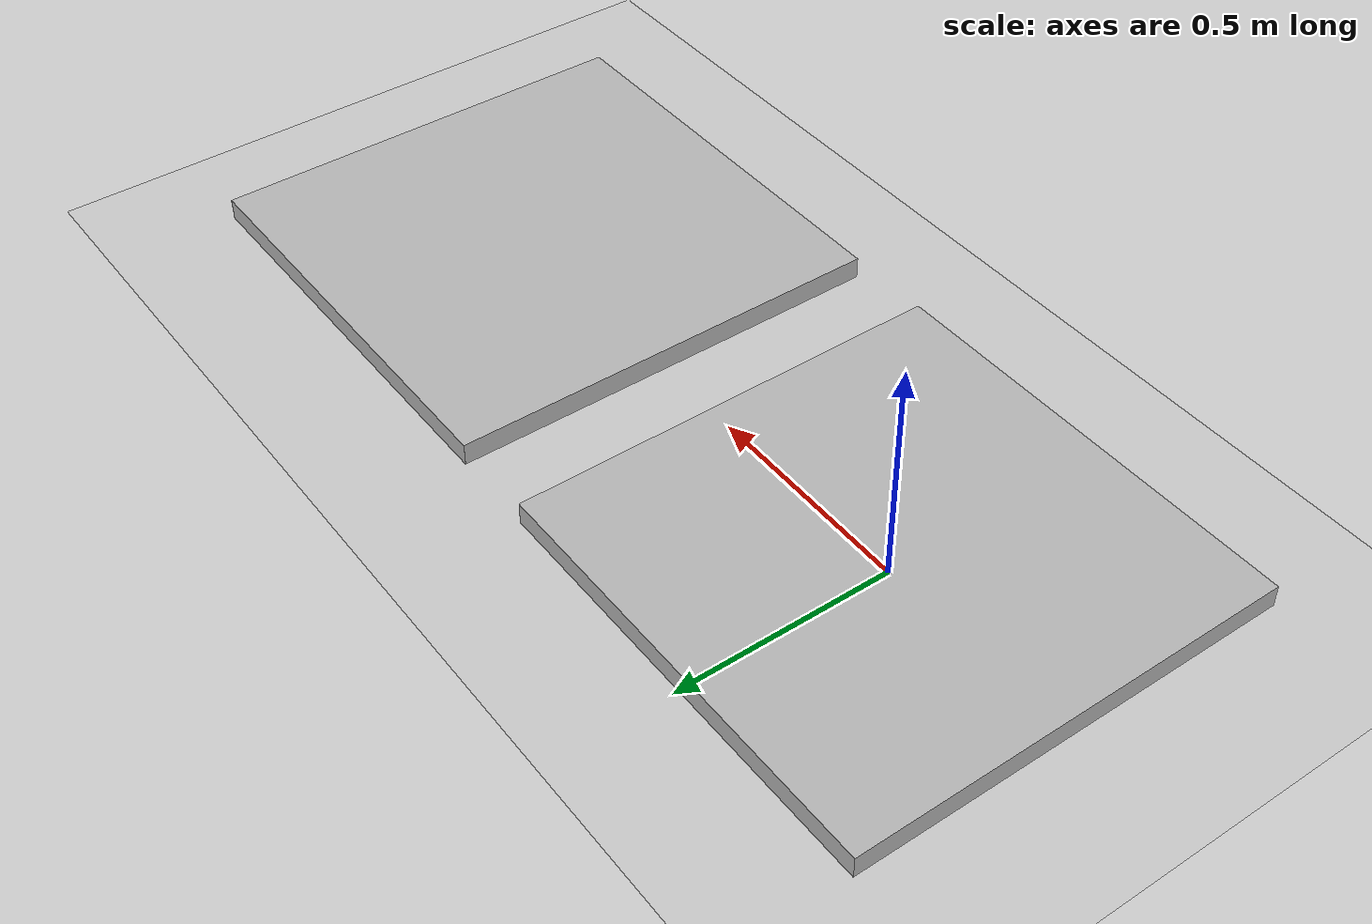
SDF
<?xml version="1.0"?>

<sdf version="1.6">
    <world name="void_world">
        <plugin name="gazebo_ros_state" filename="libgazebo_ros_state.so">
            <ros>
                <namespace>/gazebo</namespace>
                <remapping>model_states:=model_states</remapping>
                <remapping>link_states:=link_states</remapping>
            </ros>

            <update_rate>100.0</update_rate>
        </plugin>

        <physics type="ode">
         <real_time_update_rate>1000.0</real_time_update_rate>
            <max_step_size>0.001</max_step_size>
            <real_time_factor>1</real_time_factor>
            <ode>
                <solver>
                    <type>world</type>
                    <iters>150</iters>
                    <precon_iters>0</precon_iters>
                    <sor>1.400000</sor>
                    <use_dynamic_moi_rescaling>1</use_dynamic_moi_rescaling>
                </solver>
                <constraints>
                    <cfm>0.0000001</cfm>
                    <erp>0.2</erp>
                    <contact_max_correcting_vel>200.000000</contact_max_correcting_vel>
                    <contact_surface_layer>0.01000</contact_surface_layer>
                </constraints>
            </ode>
        </physics>
        <model name="box_1">
            <static>true</static>
            <pose>0.0 0 0.05 0 0 0</pose>
            <link name="link">
            <collision name="collision">
                <geometry>
                <box>
                    <size>1 1 0.05</size>
                </box>
                </geometry>
                <surface>
                    <friction>
                    <ode>
                        <mu>0.6</mu>
                        <mu2>0.6</mu2>
                    </ode>
                    </friction>
                </surface>
            </collision>
            <visual name="visual">
                <geometry>
                <box>
                    <size>1 1 0.05</size>
                </box>
                </geometry>
                <material>
                <script>Gazebo/WoodPallet</script>
                </material>
            </visual>
            </link>
        </model>
        <model name="box_2">
            <static>true</static>
            <pose>1.2 0 0.05 0 0 0</pose>
            <link name="link">
            <collision name="collision">
                <geometry>
                <box>
                    <size>1 1 0.05</size>
                </box>
                </geometry>
                <surface>
                    <friction>
                    <ode>
                        <mu>0.6</mu>
                        <mu2>0.6</mu2>
                    </ode>
                    </friction>
                </surface>
            </collision>
            <visual name="visual">
                <geometry>
                <box>
                    <size>1 1 0.05</size>
                </box>
                </geometry>
                <material>
                <script>Gazebo/WoodPallet</script>
                </material>
            </visual>
            </link>
        </model>
        <include>
            <uri>model://ground_plane</uri>
        </include>

        <include>
            <uri>model://sun</uri>
        </include>

        <gravity>
            0 0 -9.81
        </gravity>
    </world>
</sdf>
